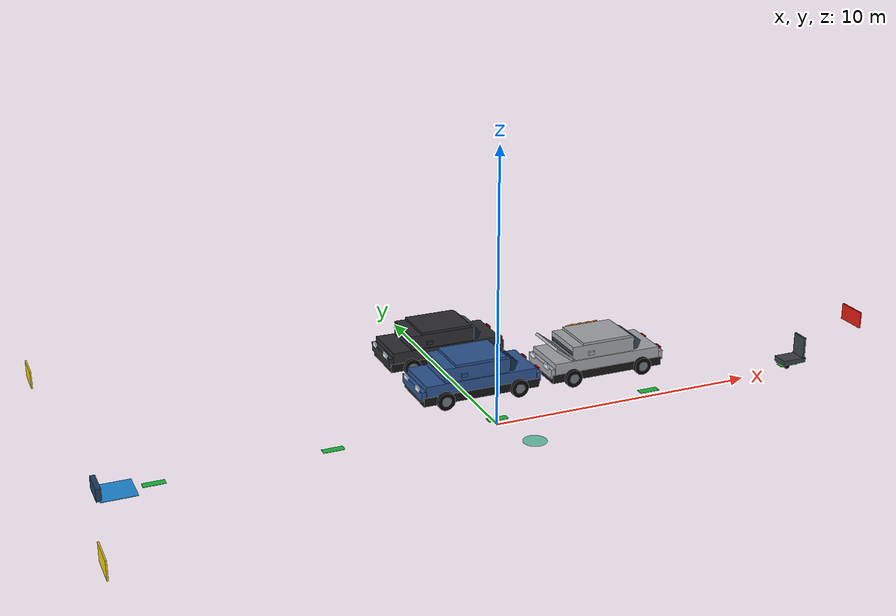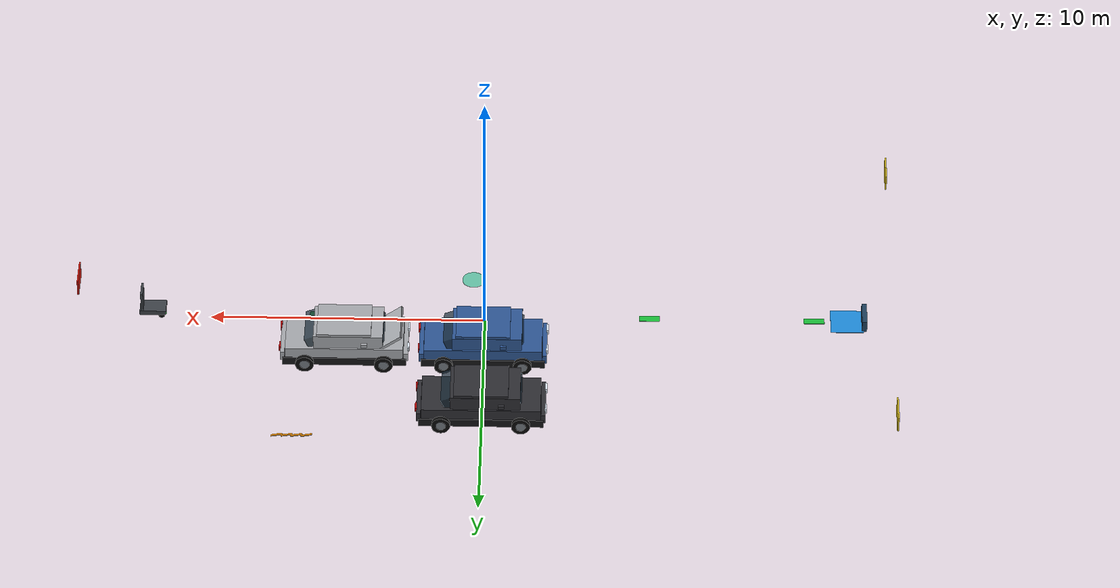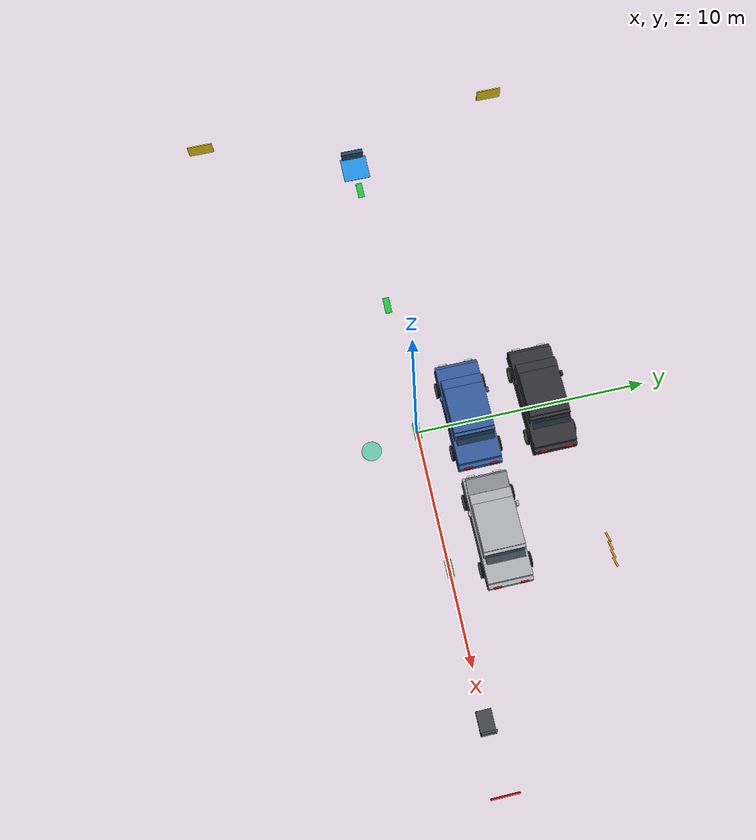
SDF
<sdf version="1.7">
 <world name="ev_car_carrier_deck_world">
  <model name="ev_13">
   <static>true</static>
   <pose>0.0000 2.2000 0.2000 0.0000 0.0000 0.0000</pose>
   <link name="vehicle">
    <collision name="chassis_collision">
     <pose>0.0000 0.0000 0.4800 0.0000 0.0000 0.0000</pose>
     <geometry><box><size>4.45 1.86 0.32</size></box></geometry>
    </collision>
    <visual name="chassis_visual">
     <pose>0.0000 0.0000 0.4800 0.0000 0.0000 0.0000</pose>
     <geometry><box><size>4.45 1.86 0.32</size></box></geometry>
     <material><ambient>0.08 0.08 0.09 1</ambient><diffuse>0.08 0.08 0.09 1</diffuse></material>
    </visual>
    <collision name="lower_body_collision">
     <pose>0.0000 0.0000 0.7800 0.0000 0.0000 0.0000</pose>
     <geometry><box><size>4.25 1.82 0.55</size></box></geometry>
    </collision>
    <visual name="lower_body_visual">
     <pose>0.0000 0.0000 0.7800 0.0000 0.0000 0.0000</pose>
     <geometry><box><size>4.25 1.82 0.55</size></box></geometry>
     <material><ambient>0.18 0.34 0.58 1</ambient><diffuse>0.18 0.34 0.58 1</diffuse></material>
    </visual>
    <collision name="cabin_collision">
     <pose>-0.1500 0.0000 1.2500 0.0000 0.0000 0.0000</pose>
     <geometry><box><size>2.5 1.7 0.65</size></box></geometry>
    </collision>
    <visual name="cabin_visual">
     <pose>-0.1500 0.0000 1.2500 0.0000 0.0000 0.0000</pose>
     <geometry><box><size>2.5 1.7 0.65</size></box></geometry>
     <material><ambient>0.18 0.34 0.58 1</ambient><diffuse>0.18 0.34 0.58 1</diffuse></material>
    </visual>
    <visual name="windshield_visual">
     <pose>-1.0500 0.0000 1.3000 0.0000 -0.4000 0.0000</pose>
     <geometry><box><size>0.7 1.56 0.42</size></box></geometry>
     <material><ambient>0.1 0.17 0.22 0.75</ambient><diffuse>0.1 0.17 0.22 0.75</diffuse></material>
    </visual>
    <visual name="rear_glass_visual">
     <pose>1.1000 0.0000 1.2800 0.0000 0.3800 0.0000</pose>
     <geometry><box><size>0.55 1.56 0.4</size></box></geometry>
     <material><ambient>0.1 0.17 0.22 0.75</ambient><diffuse>0.1 0.17 0.22 0.75</diffuse></material>
    </visual>
    <collision name="roof_collision">
     <pose>0.0000 0.0000 1.6200 0.0000 0.0000 0.0000</pose>
     <geometry><box><size>1.95 1.68 0.1</size></box></geometry>
    </collision>
    <visual name="roof_visual">
     <pose>0.0000 0.0000 1.6200 0.0000 0.0000 0.0000</pose>
     <geometry><box><size>1.95 1.68 0.1</size></box></geometry>
     <material><ambient>0.18 0.34 0.58 1</ambient><diffuse>0.18 0.34 0.58 1</diffuse></material>
    </visual>
    <collision name="battery_pack_collision">
     <pose>0.1000 0.0000 0.3000 0.0000 0.0000 0.0000</pose>
     <geometry><box><size>2.75 1.45 0.16</size></box></geometry>
    </collision>
    <visual name="battery_pack_visual">
     <pose>0.1000 0.0000 0.3000 0.0000 0.0000 0.0000</pose>
     <geometry><box><size>2.75 1.45 0.16</size></box></geometry>
     <material><ambient>0.16 0.18 0.19 1</ambient><diffuse>0.16 0.18 0.19 1</diffuse></material>
    </visual>
    <collision name="front_bumper_collision">
     <pose>-2.2200 0.0000 0.7000 0.0000 0.0000 0.0000</pose>
     <geometry><box><size>0.16 1.82 0.34</size></box></geometry>
    </collision>
    <visual name="front_bumper_visual">
     <pose>-2.2200 0.0000 0.7000 0.0000 0.0000 0.0000</pose>
     <geometry><box><size>0.16 1.82 0.34</size></box></geometry>
     <material><ambient>0.18 0.34 0.58 1</ambient><diffuse>0.18 0.34 0.58 1</diffuse></material>
    </visual>
    <collision name="rear_bumper_collision">
     <pose>2.2200 0.0000 0.7000 0.0000 0.0000 0.0000</pose>
     <geometry><box><size>0.16 1.82 0.34</size></box></geometry>
    </collision>
    <visual name="rear_bumper_visual">
     <pose>2.2200 0.0000 0.7000 0.0000 0.0000 0.0000</pose>
     <geometry><box><size>0.16 1.82 0.34</size></box></geometry>
     <material><ambient>0.18 0.34 0.58 1</ambient><diffuse>0.18 0.34 0.58 1</diffuse></material>
    </visual>
    <collision name="wheel_0_0_collision">
     <pose>-1.4200 -0.9600 0.4300 1.5708 0.0000 0.0000</pose>
     <geometry><cylinder><radius>0.33</radius><length>0.2</length></cylinder></geometry>
    </collision>
    <visual name="wheel_0_0_visual">
     <pose>-1.4200 -0.9600 0.4300 1.5708 0.0000 0.0000</pose>
     <geometry><cylinder><radius>0.33</radius><length>0.2</length></cylinder></geometry>
     <material><ambient>0.035 0.035 0.035 1</ambient><diffuse>0.035 0.035 0.035 1</diffuse></material>
    </visual>
    <visual name="rim_0_0_visual">
     <pose>-1.4200 -0.9600 0.4300 1.5708 0.0000 0.0000</pose>
     <geometry><cylinder><radius>0.18</radius><length>0.205</length></cylinder></geometry>
     <material><ambient>0.45 0.47 0.5 1</ambient><diffuse>0.45 0.47 0.5 1</diffuse></material>
    </visual>
    <collision name="wheel_0_1_collision">
     <pose>-1.4200 0.9600 0.4300 1.5708 0.0000 0.0000</pose>
     <geometry><cylinder><radius>0.33</radius><length>0.2</length></cylinder></geometry>
    </collision>
    <visual name="wheel_0_1_visual">
     <pose>-1.4200 0.9600 0.4300 1.5708 0.0000 0.0000</pose>
     <geometry><cylinder><radius>0.33</radius><length>0.2</length></cylinder></geometry>
     <material><ambient>0.035 0.035 0.035 1</ambient><diffuse>0.035 0.035 0.035 1</diffuse></material>
    </visual>
    <visual name="rim_0_1_visual">
     <pose>-1.4200 0.9600 0.4300 1.5708 0.0000 0.0000</pose>
     <geometry><cylinder><radius>0.18</radius><length>0.205</length></cylinder></geometry>
     <material><ambient>0.45 0.47 0.5 1</ambient><diffuse>0.45 0.47 0.5 1</diffuse></material>
    </visual>
    <collision name="wheel_1_0_collision">
     <pose>1.4200 -0.9600 0.4300 1.5708 0.0000 0.0000</pose>
     <geometry><cylinder><radius>0.33</radius><length>0.2</length></cylinder></geometry>
    </collision>
    <visual name="wheel_1_0_visual">
     <pose>1.4200 -0.9600 0.4300 1.5708 0.0000 0.0000</pose>
     <geometry><cylinder><radius>0.33</radius><length>0.2</length></cylinder></geometry>
     <material><ambient>0.035 0.035 0.035 1</ambient><diffuse>0.035 0.035 0.035 1</diffuse></material>
    </visual>
    <visual name="rim_1_0_visual">
     <pose>1.4200 -0.9600 0.4300 1.5708 0.0000 0.0000</pose>
     <geometry><cylinder><radius>0.18</radius><length>0.205</length></cylinder></geometry>
     <material><ambient>0.45 0.47 0.5 1</ambient><diffuse>0.45 0.47 0.5 1</diffuse></material>
    </visual>
    <collision name="wheel_1_1_collision">
     <pose>1.4200 0.9600 0.4300 1.5708 0.0000 0.0000</pose>
     <geometry><cylinder><radius>0.33</radius><length>0.2</length></cylinder></geometry>
    </collision>
    <visual name="wheel_1_1_visual">
     <pose>1.4200 0.9600 0.4300 1.5708 0.0000 0.0000</pose>
     <geometry><cylinder><radius>0.33</radius><length>0.2</length></cylinder></geometry>
     <material><ambient>0.035 0.035 0.035 1</ambient><diffuse>0.035 0.035 0.035 1</diffuse></material>
    </visual>
    <visual name="rim_1_1_visual">
     <pose>1.4200 0.9600 0.4300 1.5708 0.0000 0.0000</pose>
     <geometry><cylinder><radius>0.18</radius><length>0.205</length></cylinder></geometry>
     <material><ambient>0.45 0.47 0.5 1</ambient><diffuse>0.45 0.47 0.5 1</diffuse></material>
    </visual>
    <visual name="headlight_l_visual">
     <pose>-2.3100 -0.5500 0.8800 0.0000 0.0000 0.0000</pose>
     <geometry><box><size>0.06 0.32 0.18</size></box></geometry>
     <material><ambient>0.9 0.95 1.0 1</ambient><diffuse>0.9 0.95 1.0 1</diffuse></material>
    </visual>
    <visual name="headlight_r_visual">
     <pose>-2.3100 0.5500 0.8800 0.0000 0.0000 0.0000</pose>
     <geometry><box><size>0.06 0.32 0.18</size></box></geometry>
     <material><ambient>0.9 0.95 1.0 1</ambient><diffuse>0.9 0.95 1.0 1</diffuse></material>
    </visual>
    <visual name="taillight_l_visual">
     <pose>2.3100 -0.5500 0.8600 0.0000 0.0000 0.0000</pose>
     <geometry><box><size>0.06 0.32 0.17</size></box></geometry>
     <material><ambient>0.75 0.03 0.03 1</ambient><diffuse>0.75 0.03 0.03 1</diffuse></material>
    </visual>
    <visual name="taillight_r_visual">
     <pose>2.3100 0.5500 0.8600 0.0000 0.0000 0.0000</pose>
     <geometry><box><size>0.06 0.32 0.17</size></box></geometry>
     <material><ambient>0.75 0.03 0.03 1</ambient><diffuse>0.75 0.03 0.03 1</diffuse></material>
    </visual>
    <collision name="mirror_l_collision">
     <pose>-0.7200 -0.9800 1.3000 0.0000 0.0000 0.0000</pose>
     <geometry><box><size>0.22 0.1 0.12</size></box></geometry>
    </collision>
    <visual name="mirror_l_visual">
     <pose>-0.7200 -0.9800 1.3000 0.0000 0.0000 0.0000</pose>
     <geometry><box><size>0.22 0.1 0.12</size></box></geometry>
     <material><ambient>0.18 0.34 0.58 1</ambient><diffuse>0.18 0.34 0.58 1</diffuse></material>
    </visual>
    <collision name="mirror_r_collision">
     <pose>-0.7200 0.9800 1.3000 0.0000 0.0000 0.0000</pose>
     <geometry><box><size>0.22 0.1 0.12</size></box></geometry>
    </collision>
    <visual name="mirror_r_visual">
     <pose>-0.7200 0.9800 1.3000 0.0000 0.0000 0.0000</pose>
     <geometry><box><size>0.22 0.1 0.12</size></box></geometry>
     <material><ambient>0.18 0.34 0.58 1</ambient><diffuse>0.18 0.34 0.58 1</diffuse></material>
    </visual>
   </link>
  </model>
  <model name="ev_14">
   <static>true</static>
   <pose>5.0000 2.2000 0.2000 0.0000 0.0000 0.0000</pose>
   <link name="vehicle">
    <collision name="chassis_collision">
     <pose>0.0000 0.0000 0.4800 0.0000 0.0000 0.0000</pose>
     <geometry><box><size>4.45 1.86 0.32</size></box></geometry>
    </collision>
    <visual name="chassis_visual">
     <pose>0.0000 0.0000 0.4800 0.0000 0.0000 0.0000</pose>
     <geometry><box><size>4.45 1.86 0.32</size></box></geometry>
     <material><ambient>0.08 0.08 0.09 1</ambient><diffuse>0.08 0.08 0.09 1</diffuse></material>
    </visual>
    <collision name="lower_body_collision">
     <pose>0.0000 0.0000 0.7800 0.0000 0.0000 0.0000</pose>
     <geometry><box><size>4.25 1.82 0.55</size></box></geometry>
    </collision>
    <visual name="lower_body_visual">
     <pose>0.0000 0.0000 0.7800 0.0000 0.0000 0.0000</pose>
     <geometry><box><size>4.25 1.82 0.55</size></box></geometry>
     <material><ambient>0.65 0.66 0.68 1</ambient><diffuse>0.65 0.66 0.68 1</diffuse></material>
    </visual>
    <collision name="cabin_collision">
     <pose>-0.1500 0.0000 1.2500 0.0000 0.0000 0.0000</pose>
     <geometry><box><size>2.5 1.7 0.65</size></box></geometry>
    </collision>
    <visual name="cabin_visual">
     <pose>-0.1500 0.0000 1.2500 0.0000 0.0000 0.0000</pose>
     <geometry><box><size>2.5 1.7 0.65</size></box></geometry>
     <material><ambient>0.65 0.66 0.68 1</ambient><diffuse>0.65 0.66 0.68 1</diffuse></material>
    </visual>
    <visual name="windshield_visual">
     <pose>-1.0500 0.0000 1.3000 0.0000 -0.4000 0.0000</pose>
     <geometry><box><size>0.7 1.56 0.42</size></box></geometry>
     <material><ambient>0.1 0.17 0.22 0.75</ambient><diffuse>0.1 0.17 0.22 0.75</diffuse></material>
    </visual>
    <visual name="rear_glass_visual">
     <pose>1.1000 0.0000 1.2800 0.0000 0.3800 0.0000</pose>
     <geometry><box><size>0.55 1.56 0.4</size></box></geometry>
     <material><ambient>0.1 0.17 0.22 0.75</ambient><diffuse>0.1 0.17 0.22 0.75</diffuse></material>
    </visual>
    <collision name="roof_collision">
     <pose>0.0000 0.0000 1.6200 0.0000 0.0000 0.0000</pose>
     <geometry><box><size>1.95 1.68 0.1</size></box></geometry>
    </collision>
    <visual name="roof_visual">
     <pose>0.0000 0.0000 1.6200 0.0000 0.0000 0.0000</pose>
     <geometry><box><size>1.95 1.68 0.1</size></box></geometry>
     <material><ambient>0.65 0.66 0.68 1</ambient><diffuse>0.65 0.66 0.68 1</diffuse></material>
    </visual>
    <collision name="battery_pack_collision">
     <pose>0.1000 0.0000 0.3000 0.0000 0.0000 0.0000</pose>
     <geometry><box><size>2.75 1.45 0.16</size></box></geometry>
    </collision>
    <visual name="battery_pack_visual">
     <pose>0.1000 0.0000 0.3000 0.0000 0.0000 0.0000</pose>
     <geometry><box><size>2.75 1.45 0.16</size></box></geometry>
     <material><ambient>0.16 0.18 0.19 1</ambient><diffuse>0.16 0.18 0.19 1</diffuse></material>
    </visual>
    <collision name="front_bumper_collision">
     <pose>-2.2200 0.0000 0.7000 0.0000 0.0000 0.0000</pose>
     <geometry><box><size>0.16 1.82 0.34</size></box></geometry>
    </collision>
    <visual name="front_bumper_visual">
     <pose>-2.2200 0.0000 0.7000 0.0000 0.0000 0.0000</pose>
     <geometry><box><size>0.16 1.82 0.34</size></box></geometry>
     <material><ambient>0.65 0.66 0.68 1</ambient><diffuse>0.65 0.66 0.68 1</diffuse></material>
    </visual>
    <collision name="rear_bumper_collision">
     <pose>2.2200 0.0000 0.7000 0.0000 0.0000 0.0000</pose>
     <geometry><box><size>0.16 1.82 0.34</size></box></geometry>
    </collision>
    <visual name="rear_bumper_visual">
     <pose>2.2200 0.0000 0.7000 0.0000 0.0000 0.0000</pose>
     <geometry><box><size>0.16 1.82 0.34</size></box></geometry>
     <material><ambient>0.65 0.66 0.68 1</ambient><diffuse>0.65 0.66 0.68 1</diffuse></material>
    </visual>
    <collision name="wheel_0_0_collision">
     <pose>-1.4200 -0.9600 0.4300 1.5708 0.0000 0.0000</pose>
     <geometry><cylinder><radius>0.33</radius><length>0.2</length></cylinder></geometry>
    </collision>
    <visual name="wheel_0_0_visual">
     <pose>-1.4200 -0.9600 0.4300 1.5708 0.0000 0.0000</pose>
     <geometry><cylinder><radius>0.33</radius><length>0.2</length></cylinder></geometry>
     <material><ambient>0.035 0.035 0.035 1</ambient><diffuse>0.035 0.035 0.035 1</diffuse></material>
    </visual>
    <visual name="rim_0_0_visual">
     <pose>-1.4200 -0.9600 0.4300 1.5708 0.0000 0.0000</pose>
     <geometry><cylinder><radius>0.18</radius><length>0.205</length></cylinder></geometry>
     <material><ambient>0.45 0.47 0.5 1</ambient><diffuse>0.45 0.47 0.5 1</diffuse></material>
    </visual>
    <collision name="wheel_0_1_collision">
     <pose>-1.4200 0.9600 0.4300 1.5708 0.0000 0.0000</pose>
     <geometry><cylinder><radius>0.33</radius><length>0.2</length></cylinder></geometry>
    </collision>
    <visual name="wheel_0_1_visual">
     <pose>-1.4200 0.9600 0.4300 1.5708 0.0000 0.0000</pose>
     <geometry><cylinder><radius>0.33</radius><length>0.2</length></cylinder></geometry>
     <material><ambient>0.035 0.035 0.035 1</ambient><diffuse>0.035 0.035 0.035 1</diffuse></material>
    </visual>
    <visual name="rim_0_1_visual">
     <pose>-1.4200 0.9600 0.4300 1.5708 0.0000 0.0000</pose>
     <geometry><cylinder><radius>0.18</radius><length>0.205</length></cylinder></geometry>
     <material><ambient>0.45 0.47 0.5 1</ambient><diffuse>0.45 0.47 0.5 1</diffuse></material>
    </visual>
    <collision name="wheel_1_0_collision">
     <pose>1.4200 -0.9600 0.4300 1.5708 0.0000 0.0000</pose>
     <geometry><cylinder><radius>0.33</radius><length>0.2</length></cylinder></geometry>
    </collision>
    <visual name="wheel_1_0_visual">
     <pose>1.4200 -0.9600 0.4300 1.5708 0.0000 0.0000</pose>
     <geometry><cylinder><radius>0.33</radius><length>0.2</length></cylinder></geometry>
     <material><ambient>0.035 0.035 0.035 1</ambient><diffuse>0.035 0.035 0.035 1</diffuse></material>
    </visual>
    <visual name="rim_1_0_visual">
     <pose>1.4200 -0.9600 0.4300 1.5708 0.0000 0.0000</pose>
     <geometry><cylinder><radius>0.18</radius><length>0.205</length></cylinder></geometry>
     <material><ambient>0.45 0.47 0.5 1</ambient><diffuse>0.45 0.47 0.5 1</diffuse></material>
    </visual>
    <collision name="wheel_1_1_collision">
     <pose>1.4200 0.9600 0.4300 1.5708 0.0000 0.0000</pose>
     <geometry><cylinder><radius>0.33</radius><length>0.2</length></cylinder></geometry>
    </collision>
    <visual name="wheel_1_1_visual">
     <pose>1.4200 0.9600 0.4300 1.5708 0.0000 0.0000</pose>
     <geometry><cylinder><radius>0.33</radius><length>0.2</length></cylinder></geometry>
     <material><ambient>0.035 0.035 0.035 1</ambient><diffuse>0.035 0.035 0.035 1</diffuse></material>
    </visual>
    <visual name="rim_1_1_visual">
     <pose>1.4200 0.9600 0.4300 1.5708 0.0000 0.0000</pose>
     <geometry><cylinder><radius>0.18</radius><length>0.205</length></cylinder></geometry>
     <material><ambient>0.45 0.47 0.5 1</ambient><diffuse>0.45 0.47 0.5 1</diffuse></material>
    </visual>
    <visual name="headlight_l_visual">
     <pose>-2.3100 -0.5500 0.8800 0.0000 0.0000 0.0000</pose>
     <geometry><box><size>0.06 0.32 0.18</size></box></geometry>
     <material><ambient>0.9 0.95 1.0 1</ambient><diffuse>0.9 0.95 1.0 1</diffuse></material>
    </visual>
    <visual name="headlight_r_visual">
     <pose>-2.3100 0.5500 0.8800 0.0000 0.0000 0.0000</pose>
     <geometry><box><size>0.06 0.32 0.18</size></box></geometry>
     <material><ambient>0.9 0.95 1.0 1</ambient><diffuse>0.9 0.95 1.0 1</diffuse></material>
    </visual>
    <visual name="taillight_l_visual">
     <pose>2.3100 -0.5500 0.8600 0.0000 0.0000 0.0000</pose>
     <geometry><box><size>0.06 0.32 0.17</size></box></geometry>
     <material><ambient>0.75 0.03 0.03 1</ambient><diffuse>0.75 0.03 0.03 1</diffuse></material>
    </visual>
    <visual name="taillight_r_visual">
     <pose>2.3100 0.5500 0.8600 0.0000 0.0000 0.0000</pose>
     <geometry><box><size>0.06 0.32 0.17</size></box></geometry>
     <material><ambient>0.75 0.03 0.03 1</ambient><diffuse>0.75 0.03 0.03 1</diffuse></material>
    </visual>
    <collision name="mirror_l_collision">
     <pose>-0.7200 -0.9800 1.3000 0.0000 0.0000 0.0000</pose>
     <geometry><box><size>0.22 0.1 0.12</size></box></geometry>
    </collision>
    <visual name="mirror_l_visual">
     <pose>-0.7200 -0.9800 1.3000 0.0000 0.0000 0.0000</pose>
     <geometry><box><size>0.22 0.1 0.12</size></box></geometry>
     <material><ambient>0.65 0.66 0.68 1</ambient><diffuse>0.65 0.66 0.68 1</diffuse></material>
    </visual>
    <collision name="mirror_r_collision">
     <pose>-0.7200 0.9800 1.3000 0.0000 0.0000 0.0000</pose>
     <geometry><box><size>0.22 0.1 0.12</size></box></geometry>
    </collision>
    <visual name="mirror_r_visual">
     <pose>-0.7200 0.9800 1.3000 0.0000 0.0000 0.0000</pose>
     <geometry><box><size>0.22 0.1 0.12</size></box></geometry>
     <material><ambient>0.65 0.66 0.68 1</ambient><diffuse>0.65 0.66 0.68 1</diffuse></material>
    </visual>
    <collision name="raised_hood_collision">
     <pose>-1.6200 0.0000 1.2500 0.0000 0.6500 0.0000</pose>
     <geometry><box><size>1.1 1.7 0.1</size></box></geometry>
    </collision>
    <visual name="raised_hood_visual">
     <pose>-1.6200 0.0000 1.2500 0.0000 0.6500 0.0000</pose>
     <geometry><box><size>1.1 1.7 0.1</size></box></geometry>
     <material><ambient>0.65 0.66 0.68 1</ambient><diffuse>0.65 0.66 0.68 1</diffuse></material>
    </visual>
   </link>
  </model>
  <model name="ev_18">
   <static>true</static>
   <pose>0.0000 5.4000 0.2000 0.0000 0.0000 0.0000</pose>
   <link name="vehicle">
    <collision name="chassis_collision">
     <pose>0.0000 0.0000 0.4800 0.0000 0.0000 0.0000</pose>
     <geometry><box><size>4.45 1.86 0.32</size></box></geometry>
    </collision>
    <visual name="chassis_visual">
     <pose>0.0000 0.0000 0.4800 0.0000 0.0000 0.0000</pose>
     <geometry><box><size>4.45 1.86 0.32</size></box></geometry>
     <material><ambient>0.08 0.08 0.09 1</ambient><diffuse>0.08 0.08 0.09 1</diffuse></material>
    </visual>
    <collision name="lower_body_collision">
     <pose>0.0000 0.0000 0.7800 0.0000 0.0000 0.0000</pose>
     <geometry><box><size>4.25 1.82 0.55</size></box></geometry>
    </collision>
    <visual name="lower_body_visual">
     <pose>0.0000 0.0000 0.7800 0.0000 0.0000 0.0000</pose>
     <geometry><box><size>4.25 1.82 0.55</size></box></geometry>
     <material><ambient>0.18 0.18 0.2 1</ambient><diffuse>0.18 0.18 0.2 1</diffuse></material>
    </visual>
    <collision name="cabin_collision">
     <pose>-0.1500 0.0000 1.2500 0.0000 0.0000 0.0000</pose>
     <geometry><box><size>2.5 1.7 0.65</size></box></geometry>
    </collision>
    <visual name="cabin_visual">
     <pose>-0.1500 0.0000 1.2500 0.0000 0.0000 0.0000</pose>
     <geometry><box><size>2.5 1.7 0.65</size></box></geometry>
     <material><ambient>0.18 0.18 0.2 1</ambient><diffuse>0.18 0.18 0.2 1</diffuse></material>
    </visual>
    <visual name="windshield_visual">
     <pose>-1.0500 0.0000 1.3000 0.0000 -0.4000 0.0000</pose>
     <geometry><box><size>0.7 1.56 0.42</size></box></geometry>
     <material><ambient>0.1 0.17 0.22 0.75</ambient><diffuse>0.1 0.17 0.22 0.75</diffuse></material>
    </visual>
    <visual name="rear_glass_visual">
     <pose>1.1000 0.0000 1.2800 0.0000 0.3800 0.0000</pose>
     <geometry><box><size>0.55 1.56 0.4</size></box></geometry>
     <material><ambient>0.1 0.17 0.22 0.75</ambient><diffuse>0.1 0.17 0.22 0.75</diffuse></material>
    </visual>
    <collision name="roof_collision">
     <pose>0.0000 0.0000 1.6200 0.0000 0.0000 0.0000</pose>
     <geometry><box><size>1.95 1.68 0.1</size></box></geometry>
    </collision>
    <visual name="roof_visual">
     <pose>0.0000 0.0000 1.6200 0.0000 0.0000 0.0000</pose>
     <geometry><box><size>1.95 1.68 0.1</size></box></geometry>
     <material><ambient>0.18 0.18 0.2 1</ambient><diffuse>0.18 0.18 0.2 1</diffuse></material>
    </visual>
    <collision name="battery_pack_collision">
     <pose>0.1000 0.0000 0.3000 0.0000 0.0000 0.0000</pose>
     <geometry><box><size>2.75 1.45 0.16</size></box></geometry>
    </collision>
    <visual name="battery_pack_visual">
     <pose>0.1000 0.0000 0.3000 0.0000 0.0000 0.0000</pose>
     <geometry><box><size>2.75 1.45 0.16</size></box></geometry>
     <material><ambient>0.16 0.18 0.19 1</ambient><diffuse>0.16 0.18 0.19 1</diffuse></material>
    </visual>
    <collision name="front_bumper_collision">
     <pose>-2.2200 0.0000 0.7000 0.0000 0.0000 0.0000</pose>
     <geometry><box><size>0.16 1.82 0.34</size></box></geometry>
    </collision>
    <visual name="front_bumper_visual">
     <pose>-2.2200 0.0000 0.7000 0.0000 0.0000 0.0000</pose>
     <geometry><box><size>0.16 1.82 0.34</size></box></geometry>
     <material><ambient>0.18 0.18 0.2 1</ambient><diffuse>0.18 0.18 0.2 1</diffuse></material>
    </visual>
    <collision name="rear_bumper_collision">
     <pose>2.2200 0.0000 0.7000 0.0000 0.0000 0.0000</pose>
     <geometry><box><size>0.16 1.82 0.34</size></box></geometry>
    </collision>
    <visual name="rear_bumper_visual">
     <pose>2.2200 0.0000 0.7000 0.0000 0.0000 0.0000</pose>
     <geometry><box><size>0.16 1.82 0.34</size></box></geometry>
     <material><ambient>0.18 0.18 0.2 1</ambient><diffuse>0.18 0.18 0.2 1</diffuse></material>
    </visual>
    <collision name="wheel_0_0_collision">
     <pose>-1.4200 -0.9600 0.4300 1.5708 0.0000 0.0000</pose>
     <geometry><cylinder><radius>0.33</radius><length>0.2</length></cylinder></geometry>
    </collision>
    <visual name="wheel_0_0_visual">
     <pose>-1.4200 -0.9600 0.4300 1.5708 0.0000 0.0000</pose>
     <geometry><cylinder><radius>0.33</radius><length>0.2</length></cylinder></geometry>
     <material><ambient>0.035 0.035 0.035 1</ambient><diffuse>0.035 0.035 0.035 1</diffuse></material>
    </visual>
    <visual name="rim_0_0_visual">
     <pose>-1.4200 -0.9600 0.4300 1.5708 0.0000 0.0000</pose>
     <geometry><cylinder><radius>0.18</radius><length>0.205</length></cylinder></geometry>
     <material><ambient>0.45 0.47 0.5 1</ambient><diffuse>0.45 0.47 0.5 1</diffuse></material>
    </visual>
    <collision name="wheel_0_1_collision">
     <pose>-1.4200 0.9600 0.4300 1.5708 0.0000 0.0000</pose>
     <geometry><cylinder><radius>0.33</radius><length>0.2</length></cylinder></geometry>
    </collision>
    <visual name="wheel_0_1_visual">
     <pose>-1.4200 0.9600 0.4300 1.5708 0.0000 0.0000</pose>
     <geometry><cylinder><radius>0.33</radius><length>0.2</length></cylinder></geometry>
     <material><ambient>0.035 0.035 0.035 1</ambient><diffuse>0.035 0.035 0.035 1</diffuse></material>
    </visual>
    <visual name="rim_0_1_visual">
     <pose>-1.4200 0.9600 0.4300 1.5708 0.0000 0.0000</pose>
     <geometry><cylinder><radius>0.18</radius><length>0.205</length></cylinder></geometry>
     <material><ambient>0.45 0.47 0.5 1</ambient><diffuse>0.45 0.47 0.5 1</diffuse></material>
    </visual>
    <collision name="wheel_1_0_collision">
     <pose>1.4200 -0.9600 0.4300 1.5708 0.0000 0.0000</pose>
     <geometry><cylinder><radius>0.33</radius><length>0.2</length></cylinder></geometry>
    </collision>
    <visual name="wheel_1_0_visual">
     <pose>1.4200 -0.9600 0.4300 1.5708 0.0000 0.0000</pose>
     <geometry><cylinder><radius>0.33</radius><length>0.2</length></cylinder></geometry>
     <material><ambient>0.035 0.035 0.035 1</ambient><diffuse>0.035 0.035 0.035 1</diffuse></material>
    </visual>
    <visual name="rim_1_0_visual">
     <pose>1.4200 -0.9600 0.4300 1.5708 0.0000 0.0000</pose>
     <geometry><cylinder><radius>0.18</radius><length>0.205</length></cylinder></geometry>
     <material><ambient>0.45 0.47 0.5 1</ambient><diffuse>0.45 0.47 0.5 1</diffuse></material>
    </visual>
    <collision name="wheel_1_1_collision">
     <pose>1.4200 0.9600 0.4300 1.5708 0.0000 0.0000</pose>
     <geometry><cylinder><radius>0.33</radius><length>0.2</length></cylinder></geometry>
    </collision>
    <visual name="wheel_1_1_visual">
     <pose>1.4200 0.9600 0.4300 1.5708 0.0000 0.0000</pose>
     <geometry><cylinder><radius>0.33</radius><length>0.2</length></cylinder></geometry>
     <material><ambient>0.035 0.035 0.035 1</ambient><diffuse>0.035 0.035 0.035 1</diffuse></material>
    </visual>
    <visual name="rim_1_1_visual">
     <pose>1.4200 0.9600 0.4300 1.5708 0.0000 0.0000</pose>
     <geometry><cylinder><radius>0.18</radius><length>0.205</length></cylinder></geometry>
     <material><ambient>0.45 0.47 0.5 1</ambient><diffuse>0.45 0.47 0.5 1</diffuse></material>
    </visual>
    <visual name="headlight_l_visual">
     <pose>-2.3100 -0.5500 0.8800 0.0000 0.0000 0.0000</pose>
     <geometry><box><size>0.06 0.32 0.18</size></box></geometry>
     <material><ambient>0.9 0.95 1.0 1</ambient><diffuse>0.9 0.95 1.0 1</diffuse></material>
    </visual>
    <visual name="headlight_r_visual">
     <pose>-2.3100 0.5500 0.8800 0.0000 0.0000 0.0000</pose>
     <geometry><box><size>0.06 0.32 0.18</size></box></geometry>
     <material><ambient>0.9 0.95 1.0 1</ambient><diffuse>0.9 0.95 1.0 1</diffuse></material>
    </visual>
    <visual name="taillight_l_visual">
     <pose>2.3100 -0.5500 0.8600 0.0000 0.0000 0.0000</pose>
     <geometry><box><size>0.06 0.32 0.17</size></box></geometry>
     <material><ambient>0.75 0.03 0.03 1</ambient><diffuse>0.75 0.03 0.03 1</diffuse></material>
    </visual>
    <visual name="taillight_r_visual">
     <pose>2.3100 0.5500 0.8600 0.0000 0.0000 0.0000</pose>
     <geometry><box><size>0.06 0.32 0.17</size></box></geometry>
     <material><ambient>0.75 0.03 0.03 1</ambient><diffuse>0.75 0.03 0.03 1</diffuse></material>
    </visual>
    <collision name="mirror_l_collision">
     <pose>-0.7200 -0.9800 1.3000 0.0000 0.0000 0.0000</pose>
     <geometry><box><size>0.22 0.1 0.12</size></box></geometry>
    </collision>
    <visual name="mirror_l_visual">
     <pose>-0.7200 -0.9800 1.3000 0.0000 0.0000 0.0000</pose>
     <geometry><box><size>0.22 0.1 0.12</size></box></geometry>
     <material><ambient>0.18 0.18 0.2 1</ambient><diffuse>0.18 0.18 0.2 1</diffuse></material>
    </visual>
    <collision name="mirror_r_collision">
     <pose>-0.7200 0.9800 1.3000 0.0000 0.0000 0.0000</pose>
     <geometry><box><size>0.22 0.1 0.12</size></box></geometry>
    </collision>
    <visual name="mirror_r_visual">
     <pose>-0.7200 0.9800 1.3000 0.0000 0.0000 0.0000</pose>
     <geometry><box><size>0.22 0.1 0.12</size></box></geometry>
     <material><ambient>0.18 0.18 0.2 1</ambient><diffuse>0.18 0.18 0.2 1</diffuse></material>
    </visual>
   </link>
  </model>
  <model name="inspection_anomalies">
   <static>true</static>
   <link name="link">
    <visual name="suspected_electrolyte_patch_visual">
     <pose>0.4500 -2.0500 0.2220 0.0000 0.0000 0.0000</pose>
     <geometry><cylinder><radius>0.42</radius><length>0.012</length></cylinder></geometry>
     <material><ambient>0.28 0.78 0.62 0.75</ambient><diffuse>0.28 0.78 0.62 0.75</diffuse></material>
    </visual>
    <collision name="loose_lashing_strap_0_collision">
     <pose>6.2000 6.6200 0.2450 0.0000 0.0000 0.2200</pose>
     <geometry><box><size>0.42 0.07 0.03</size></box></geometry>
    </collision>
    <visual name="loose_lashing_strap_0_visual">
     <pose>6.2000 6.6200 0.2450 0.0000 0.0000 0.2200</pose>
     <geometry><box><size>0.42 0.07 0.03</size></box></geometry>
     <material><ambient>0.95 0.58 0.05 1</ambient><diffuse>0.95 0.58 0.05 1</diffuse></material>
    </visual>
    <collision name="loose_lashing_strap_1_collision">
     <pose>6.5500 6.6200 0.2450 0.0000 0.0000 0.2200</pose>
     <geometry><box><size>0.42 0.07 0.03</size></box></geometry>
    </collision>
    <visual name="loose_lashing_strap_1_visual">
     <pose>6.5500 6.6200 0.2450 0.0000 0.0000 0.2200</pose>
     <geometry><box><size>0.42 0.07 0.03</size></box></geometry>
     <material><ambient>0.95 0.58 0.05 1</ambient><diffuse>0.95 0.58 0.05 1</diffuse></material>
    </visual>
    <collision name="loose_lashing_strap_2_collision">
     <pose>6.9000 6.6200 0.2450 0.0000 0.0000 0.2200</pose>
     <geometry><box><size>0.42 0.07 0.03</size></box></geometry>
    </collision>
    <visual name="loose_lashing_strap_2_visual">
     <pose>6.9000 6.6200 0.2450 0.0000 0.0000 0.2200</pose>
     <geometry><box><size>0.42 0.07 0.03</size></box></geometry>
     <material><ambient>0.95 0.58 0.05 1</ambient><diffuse>0.95 0.58 0.05 1</diffuse></material>
    </visual>
    <collision name="loose_lashing_strap_3_collision">
     <pose>7.2500 6.6200 0.2450 0.0000 0.0000 0.2200</pose>
     <geometry><box><size>0.42 0.07 0.03</size></box></geometry>
    </collision>
    <visual name="loose_lashing_strap_3_visual">
     <pose>7.2500 6.6200 0.2450 0.0000 0.0000 0.2200</pose>
     <geometry><box><size>0.42 0.07 0.03</size></box></geometry>
     <material><ambient>0.95 0.58 0.05 1</ambient><diffuse>0.95 0.58 0.05 1</diffuse></material>
    </visual>
    <collision name="service_cart_base_collision">
     <pose>12.1000 0.0000 0.4200 0.0000 0.0000 0.0000</pose>
     <geometry><box><size>0.95 0.62 0.18</size></box></geometry>
    </collision>
    <visual name="service_cart_base_visual">
     <pose>12.1000 0.0000 0.4200 0.0000 0.0000 0.0000</pose>
     <geometry><box><size>0.95 0.62 0.18</size></box></geometry>
     <material><ambient>0.24 0.26 0.28 1</ambient><diffuse>0.24 0.26 0.28 1</diffuse></material>
    </visual>
    <collision name="service_cart_handle_collision">
     <pose>12.4800 0.0000 0.8800 0.0000 0.0000 0.0000</pose>
     <geometry><box><size>0.08 0.62 0.85</size></box></geometry>
    </collision>
    <visual name="service_cart_handle_visual">
     <pose>12.4800 0.0000 0.8800 0.0000 0.0000 0.0000</pose>
     <geometry><box><size>0.08 0.62 0.85</size></box></geometry>
     <material><ambient>0.24 0.26 0.28 1</ambient><diffuse>0.24 0.26 0.28 1</diffuse></material>
    </visual>
    <collision name="service_cart_wheel_-0.25_collision">
     <pose>11.7800 -0.2500 0.3000 1.5708 0.0000 0.0000</pose>
     <geometry><cylinder><radius>0.11</radius><length>0.08</length></cylinder></geometry>
    </collision>
    <visual name="service_cart_wheel_-0.25_visual">
     <pose>11.7800 -0.2500 0.3000 1.5708 0.0000 0.0000</pose>
     <geometry><cylinder><radius>0.11</radius><length>0.08</length></cylinder></geometry>
     <material><ambient>0.03 0.03 0.03 1</ambient><diffuse>0.03 0.03 0.03 1</diffuse></material>
    </visual>
    <collision name="service_cart_wheel_0.25_collision">
     <pose>11.7800 0.2500 0.3000 1.5708 0.0000 0.0000</pose>
     <geometry><cylinder><radius>0.11</radius><length>0.08</length></cylinder></geometry>
    </collision>
    <visual name="service_cart_wheel_0.25_visual">
     <pose>11.7800 0.2500 0.3000 1.5708 0.0000 0.0000</pose>
     <geometry><cylinder><radius>0.11</radius><length>0.08</length></cylinder></geometry>
     <material><ambient>0.03 0.03 0.03 1</ambient><diffuse>0.03 0.03 0.03 1</diffuse></material>
    </visual>
   </link>
  </model>
  <model name="safety_signage">
   <static>true</static>
   <link name="link">
    <visual name="sign_panel_0_visual">
     <pose>-14.7500 6.7000 1.7500 0.0000 0.0000 0.0000</pose>
     <geometry><box><size>0.05 1.1 0.62</size></box></geometry>
     <material><ambient>0.9 0.78 0.1 1</ambient><diffuse>0.9 0.78 0.1 1</diffuse></material>
    </visual>
    <visual name="sign_panel_1_visual">
     <pose>-14.7500 -6.7000 1.7500 0.0000 0.0000 0.0000</pose>
     <geometry><box><size>0.05 1.1 0.62</size></box></geometry>
     <material><ambient>0.9 0.78 0.1 1</ambient><diffuse>0.9 0.78 0.1 1</diffuse></material>
    </visual>
    <visual name="sign_panel_2_visual">
     <pose>14.7500 0.0000 1.7500 0.0000 0.0000 0.0000</pose>
     <geometry><box><size>0.05 1.1 0.62</size></box></geometry>
     <material><ambient>0.88 0.1 0.06 1</ambient><diffuse>0.88 0.1 0.06 1</diffuse></material>
    </visual>
    <visual name="exit_arrow_-12_visual">
     <pose>-12.0000 0.0000 0.2240 0.0000 0.0000 0.0000</pose>
     <geometry><box><size>0.75 0.28 0.015</size></box></geometry>
     <material><ambient>0.1 0.75 0.22 1</ambient><diffuse>0.1 0.75 0.22 1</diffuse></material>
    </visual>
    <visual name="exit_arrow_-6_visual">
     <pose>-6.0000 0.0000 0.2240 0.0000 0.0000 0.0000</pose>
     <geometry><box><size>0.75 0.28 0.015</size></box></geometry>
     <material><ambient>0.1 0.75 0.22 1</ambient><diffuse>0.1 0.75 0.22 1</diffuse></material>
    </visual>
    <visual name="exit_arrow_0_visual">
     <pose>0.0000 0.0000 0.2240 0.0000 0.0000 0.0000</pose>
     <geometry><box><size>0.75 0.28 0.015</size></box></geometry>
     <material><ambient>0.1 0.75 0.22 1</ambient><diffuse>0.1 0.75 0.22 1</diffuse></material>
    </visual>
    <visual name="exit_arrow_6_visual">
     <pose>6.0000 0.0000 0.2240 0.0000 0.0000 0.0000</pose>
     <geometry><box><size>0.75 0.28 0.015</size></box></geometry>
     <material><ambient>0.1 0.75 0.22 1</ambient><diffuse>0.1 0.75 0.22 1</diffuse></material>
    </visual>
    <visual name="exit_arrow_12_visual">
     <pose>12.0000 0.0000 0.2240 0.0000 0.0000 0.0000</pose>
     <geometry><box><size>0.75 0.28 0.015</size></box></geometry>
     <material><ambient>0.1 0.75 0.22 1</ambient><diffuse>0.1 0.75 0.22 1</diffuse></material>
    </visual>
   </link>
  </model>
  <model name="inspection_robot_start_zone">
   <static>true</static>
   <link name="link">
    <visual name="start_pad_visual">
     <pose>-13.2000 0.0000 0.2250 0.0000 0.0000 0.0000</pose>
     <geometry><box><size>1.2 1.2 0.02</size></box></geometry>
     <material><ambient>0.12 0.55 0.86 1</ambient><diffuse>0.12 0.55 0.86 1</diffuse></material>
    </visual>
    <collision name="dock_backstop_collision">
     <pose>-13.8200 0.0000 0.4300 0.0000 0.0000 0.0000</pose>
     <geometry><box><size>0.18 1.0 0.45</size></box></geometry>
    </collision>
    <visual name="dock_backstop_visual">
     <pose>-13.8200 0.0000 0.4300 0.0000 0.0000 0.0000</pose>
     <geometry><box><size>0.18 1.0 0.45</size></box></geometry>
     <material><ambient>0.12 0.25 0.36 1</ambient><diffuse>0.12 0.25 0.36 1</diffuse></material>
    </visual>
   </link>
  </model>
 </world>
</sdf>
